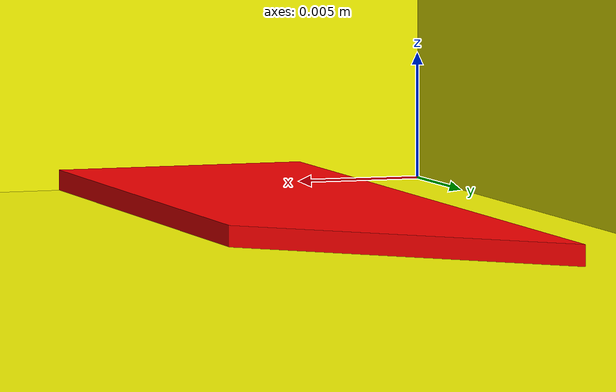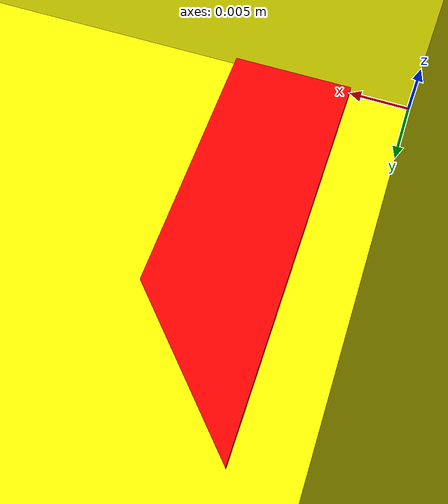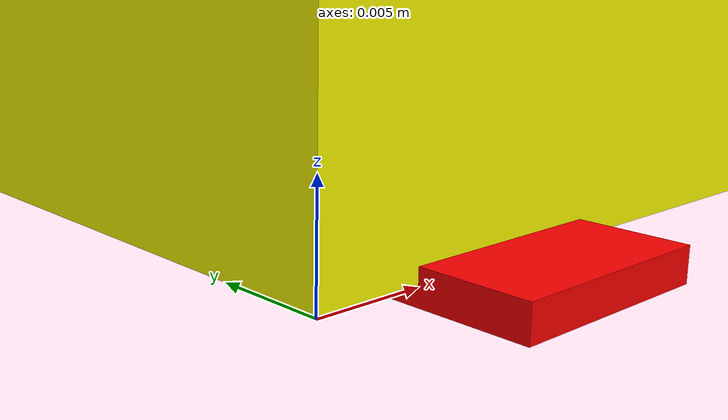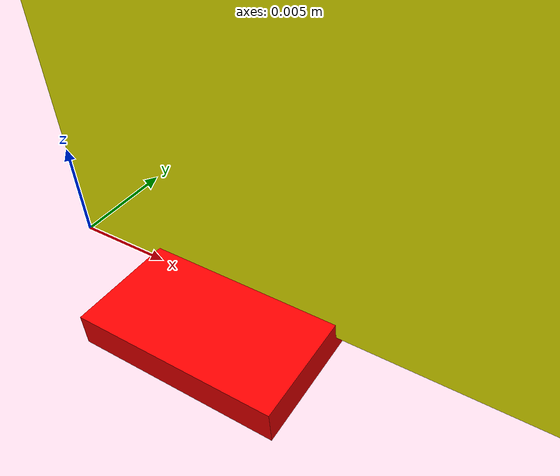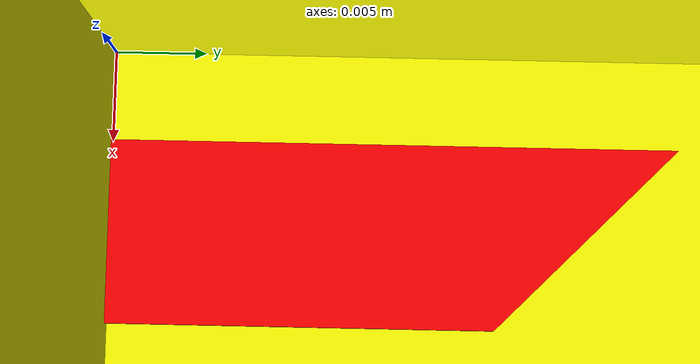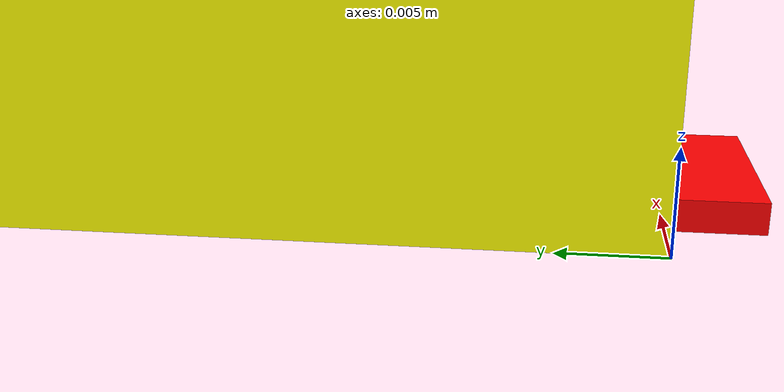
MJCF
<mujoco model="poly_test">
    <asset>
        <mesh name="poly1" vertex="0 0 0  0 1 0  1 0 0  1 1 0  0.5 1.5 0  0 0 0.1  0 1 0.1  1 0 0.1  1 1 0.1  0.5 1.5 0.1"/>
    </asset>
    <asset>
        <mesh name="poly2" vertex="0 0 0  0 1 0  1 0 0  1 1 0  0.5 0.5 0  0 0 0.1  0 1 0.1  1 0 0.1  1 1 0.1  0.5 0.5 0.1"/>
    </asset>
    <asset>
        <mesh name="coner" vertex="0 0 -0.0008  0.01 0 -0.0008  0.01 0.026 -0.0008  0 0.036 -0.0008  0 0 0.0008  0.01 0 0.0008  0.01 0.026 0.0008  0 0.036 0.0008"/>
    </asset>

    <worldbody>
        <light diffuse=".5 .5 .5" pos="0 0 10" dir="0 0 -1"/>
        <body name="poly1" pos="0 0 0" euler="0 0 0">
            <geom type="mesh" mesh="poly1" size="0.005 0.005 0.0008" rgba="1 1 0 1" pos="0 0 0" mass="1.0"/>
        </body>

        <body name="polytest2" pos="0.005 -0.005 0" euler="0 0 0">
            <geom type="mesh" mesh="coner" rgba="1 0 0 1" pos="0 0 0" mass="1.0"/>
        </body>
    </worldbody>

</mujoco>
